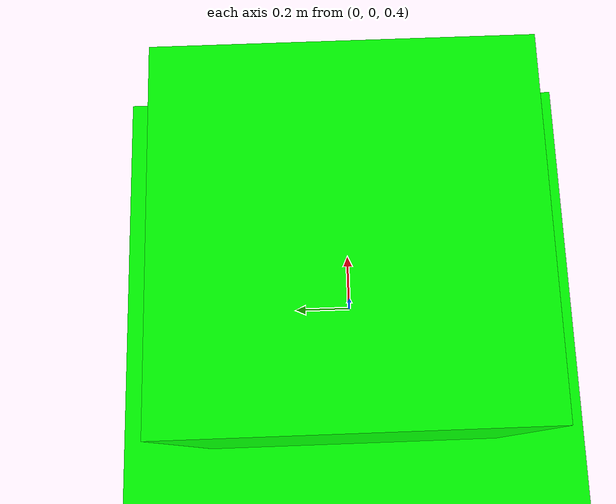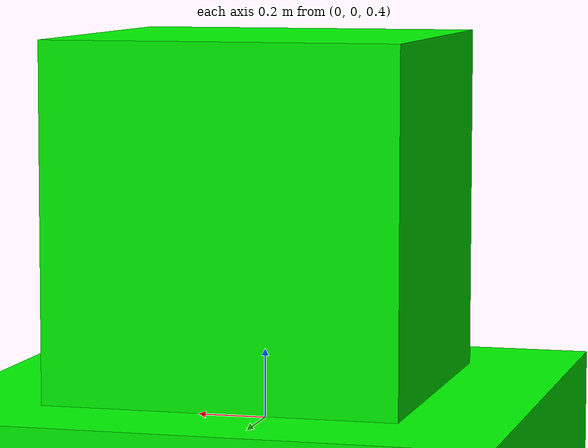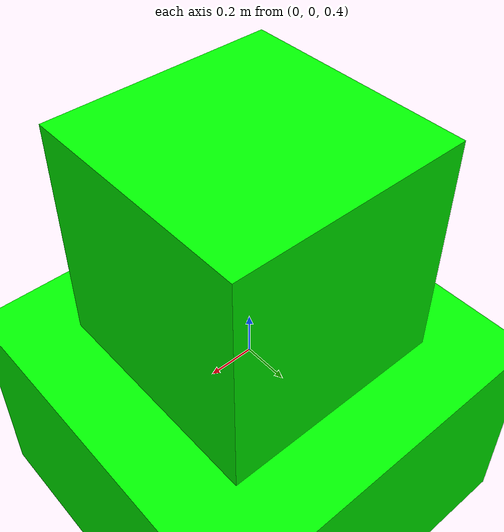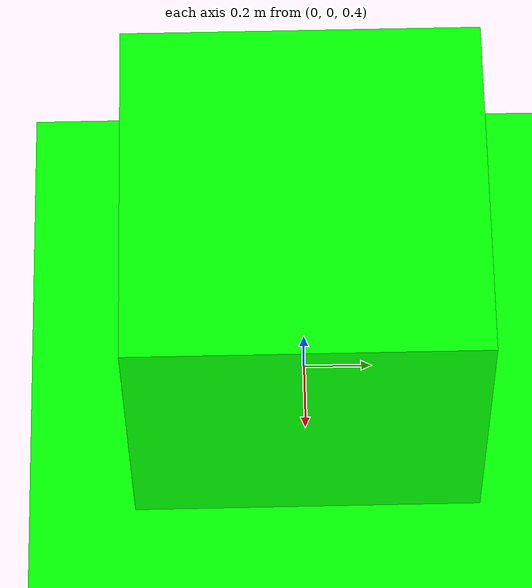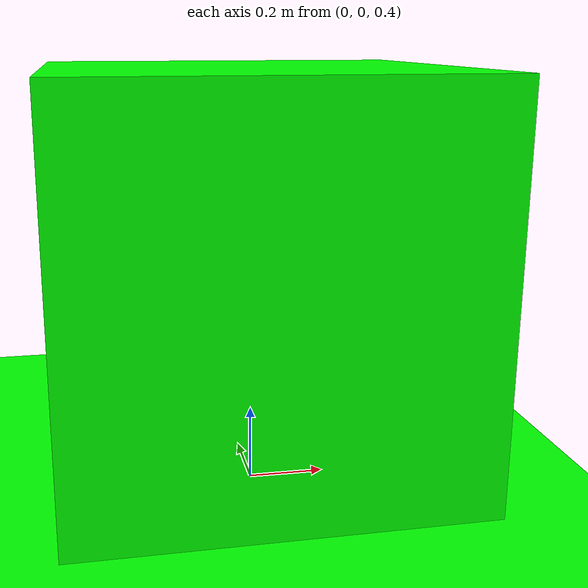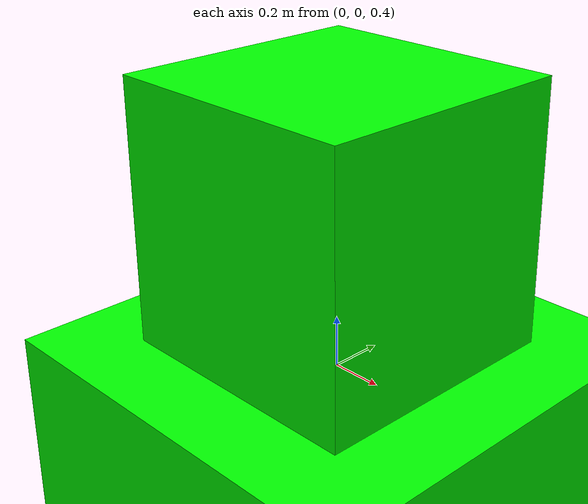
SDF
<sdf version='1.6'>
  <model name='ground'>

  <link name="ground">
  <pose> 0 0 0 0 0 0</pose>
  <visual name='ground_visual'>
    <pose> 0 0 0 0 0 0 </pose>
    <geometry>
      <box>
       <size>10 10 1</size>
      </box>
    </geometry>
    <material>
      <diffuse>0 1 0 1.0</diffuse>
    </material>
  </visual>

  <collision name='ground_collision'>
    <pose> 0 0 0 0 0 0 </pose>
    <geometry>
      <box>
       <size>10 10 1</size>
      </box>
    </geometry>
    <surface>
      <friction>
      <ode>
        <mu>0.5</mu>
        <mu2>0.5</mu2>
      </ode>
      </friction>
    </surface>
  </collision>

  <visual name='platform_visual'>
    <pose> 0 0 1.0 0 0 0 </pose>
    <geometry>
      <box>
       <size>1 1 1</size>
      </box>
    </geometry>
    <material>
      <diffuse>0 1 0 1.0</diffuse>
    </material>
  </visual>

  <collision name='platform_collision'>
    <pose> 0 0 1.0 0 0 0 </pose>
    <geometry>
      <box>
       <size>1 1 1</size>
      </box>
    </geometry>
    <surface>
      <friction>
      <ode>
        <mu>0.5</mu>
        <mu2>0.5</mu2>
      </ode>
      </friction>
    </surface>
  </collision>
  </link>

  </model>
</sdf>
